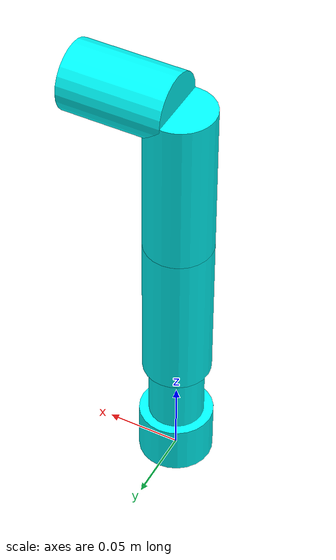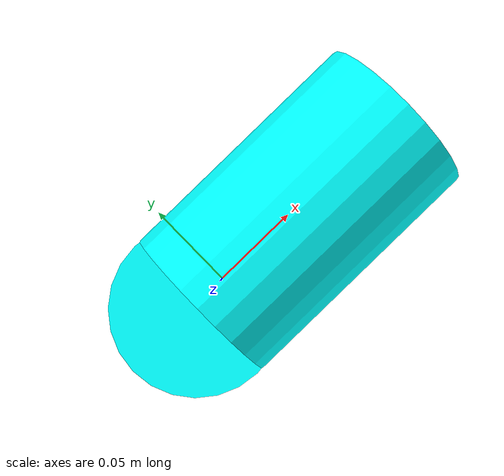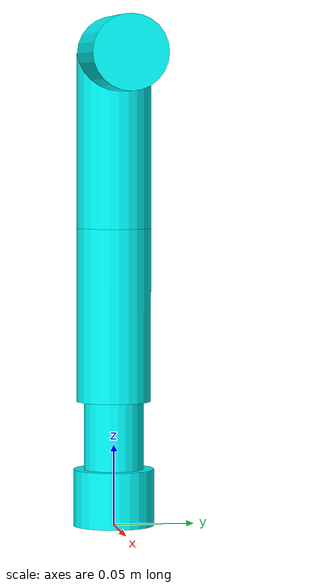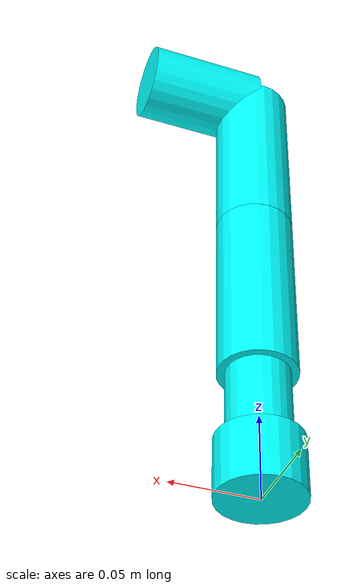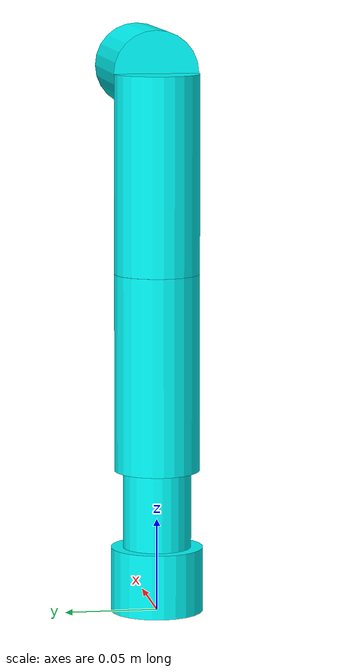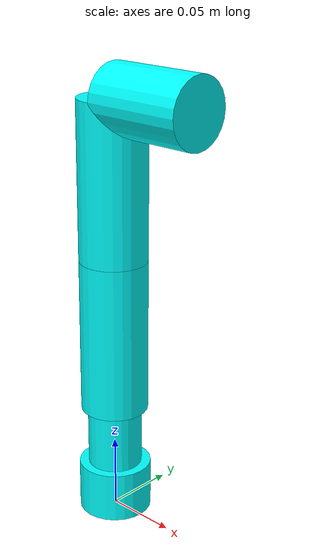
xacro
<?xml version="1.0"?>
<robot name="PxP_description" xmlns:xacro="http://www.ros.org/wiki/xacro">

    <xacro:include filename="$(find phantom_x_pincher)/macros/phantom_macros.xacro" />

    <material name="cyan">
        <color rgba="0.0 1.0 1.0 1.0"/>
    </material>

    Base link from Gazebo
    <link name="world"/>

    <joint name="fixed" type="fixed">  Joint to fix the base so it does not move
        <parent link="world"/>
        <child link="base_link"/>
    </joint>

    <link name="base_link">

    </link>

    <joint name="base_joint" type="fixed">
        <parent link="base_link"/>
        <child link="robot_base"/>
        <origin xyz="0.0 0.0 0.0" rpy="0.0 0.0 0.0"/>
    </joint>

    <xacro:link_robot
    name= "robot_base"
    origin_xyz= "0.0 0.0 0.0175"
    origin_rpy= "0.0 0.0 0.0"
    radius= "0.025"
    length= "0.035"
    material="cyan"
    />

    <xacro:joint_R
    name = "joint_1"
    type = "revolute"
    origin_xyz = "0 0 0.035"
    origin_rpy = "0 0 0"
    parent = "robot_base"
    child = "link_1"
    axis = "0 0 1"
    limit_l = "-3.14"
    limit_u = "3.14"
    limit_e ="10.0"
    limit_v = "0.5"
    />

    <xacro:link_robot
    name= "link_1"
    origin_xyz= "0.0 0.0 0.021"
    origin_rpy= "0.0 0.0 0.0"
    radius= "0.0185"
    length= "0.042"
    material="cyan"
    />

    <xacro:joint_R
    name = "joint_2"
    type = "revolute"
    origin_xyz = "0 0 0.042"
    origin_rpy = "1.57 0 0"
    parent = "link_1"
    child = "link_2"
    axis = "0 0 1"
    limit_l = "-3.14"
    limit_u = "3.14"
    limit_e ="10.0"
    limit_v = "0.5"
    />

    <xacro:link_robot
    name= "link_2"
    origin_xyz= "0.0 0.0535 0.0"
    origin_rpy= "1.57 0.0 0.0"
    radius= "0.023"
    length= "0.107"
    material="cyan"
    />

     <xacro:joint_R
    name = "joint_3"
    type = "revolute"
    origin_xyz = "0 0.107 0.0"
    origin_rpy = "0.0 0.0 1.57"
    parent = "link_2"
    child = "link_3"
    axis = "0 0 1"
    limit_l = "-3.14"
    limit_u = "3.14"
    limit_e ="10.0"
    limit_v = "0.5"
    />

    <xacro:link_robot
    name= "link_3"
    origin_xyz= "0.0535 0.0 0.0"
    origin_rpy= "0.0 1.57 0.0"
    radius= "0.023"
    length= "0.107"
    material="cyan"
    />

         <xacro:joint_R
    name = "joint_4"
    type = "revolute"
    origin_xyz = "0.107 0.0 0.0"
    origin_rpy = "0.0 0.0 -1.57"
    parent = "link_3"
    child = "link_4"
    axis = "0 0 1"
    limit_l = "-3.14"
    limit_u = "3.14"
    limit_e ="10.0"
    limit_v = "0.5"
    />

    <xacro:link_robot
    name= "link_4"
    origin_xyz= "0.037 0.0 0.0"
    origin_rpy= "1.57 0.0 1.57"
    radius= "0.023"
    length= "0.070"
    material="cyan"
    />
    <!-- Gazebo ROS Plugin-->
    <!-- Plugin para que Gazebo pueda entender los controladores-->
    <gazebo>
        <plugin name="gazebo_ros_control" filename="libgazebo_ros_control.so">
            <robotNamespace>/</robotNamespace>
        </plugin>
    </gazebo>

</robot>

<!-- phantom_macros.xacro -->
<robot xmlns:xacro="http://www.ros.org/wiki/xacro" name="phantom_macros">

    <xacro:macro name="joint_R" params="name type origin_xyz origin_rpy parent child axis limit_l limit_u limit_e limit_v">

        <joint name="${name}" type="${type}">
            <origin xyz="${origin_xyz}" rpy="${origin_rpy}"/>
            <parent link="${parent}"/>
            <child link="${child}"/>
            <axis xyz="${axis}"/>
            <limit lower="${limit_l}" upper="${limit_u}" effort="${limit_e}" velocity="${limit_v}"/>
        </joint>
        <transmission name="trans_${name}">
	        <type>transmission_interface/SimpleTransmission</type>
	        <joint name="${name}">
		        <hardwareInterface>hardware_interface/PositionJointInterface</hardwareInterface>
	        </joint>
	        <actuator name="motor_${name}">
		        <hardwareInterface>hardware_interface/PositionJointInterface</hardwareInterface>
		    <mechanicalReduction>1</mechanicalReduction>
	        </actuator>
	    </transmission>

    </xacro:macro>

    <xacro:macro name="link_robot" params="name origin_xyz origin_rpy radius length material">
        <link name="${name}">
            <inertial>
                <origin xyz="0.0 0.0 0.0" rpy="0.0 0.0 0.0"/>
                <mass value="1.0"/>
                <inertia ixx="0.001" ixy="0.0" ixz="0.0" iyy="0.001" iyz="0.0" izz="0.001"/>
            </inertial>
            <visual>
                <origin xyz="${origin_xyz}" rpy="${origin_rpy}"/>
                <geometry>
                    <cylinder radius="${radius}" length="${length}"/>
                </geometry>
                <material name="${material}"/>
            </visual>
            <collision>
                <origin xyz="${origin_xyz}" rpy="${origin_rpy}"/>
                <geometry>
                    <cylinder radius="${radius}" length="${length}"/>
                </geometry>
            </collision>
        </link>
    </xacro:macro>

</robot>
